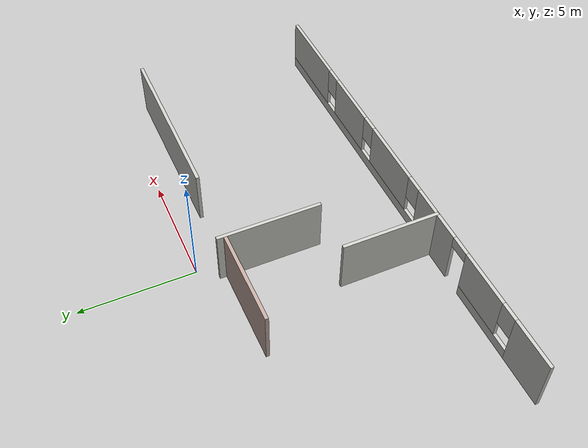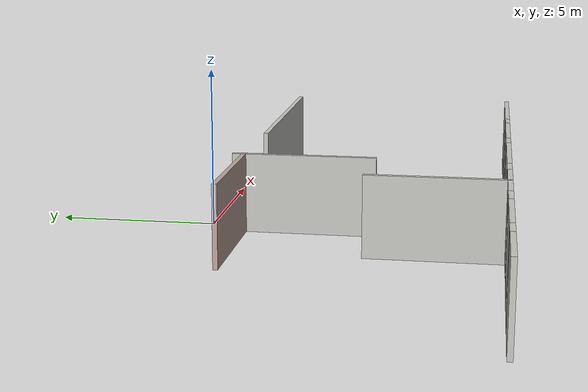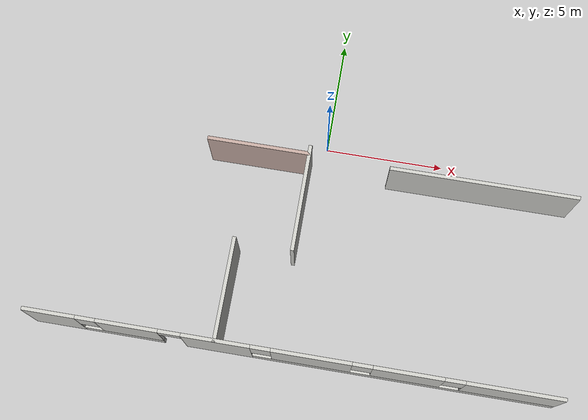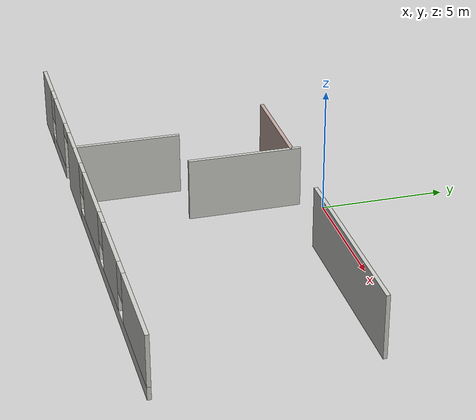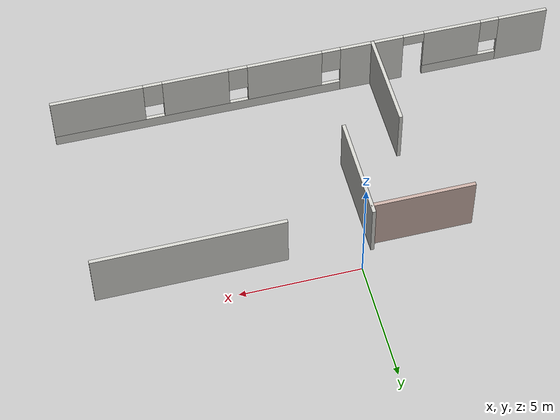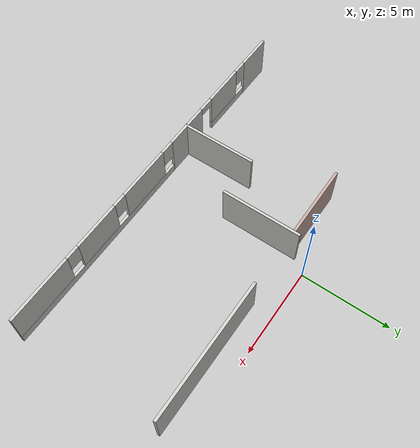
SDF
<sdf version="1.7">
 <model name="training_area">
  <link name="Wall_11">
   <pose>-2.97768 -7.23047 0 0 0 -1.5708</pose>
   <visual name="Wall_11_Visual">
    <pose>0 0 1.25 0 -0 0</pose>
    <geometry><box><size>4.25 0.15 2.5</size></box></geometry>
    <material>
     <script><uri>file://media/materials/scripts/gazebo.material</uri><name>Gazebo/CeilingTiled</name></script>
     <ambient>0.760784 0.662745 0.627451 1</ambient>
     <shader type="pixel"/>
    </material>
    <meta><layer>0</layer></meta>
   </visual>
   <collision name="Wall_11_Collision">
    <pose>0 0 1.25 0 -0 0</pose>
    <geometry><box><size>4.25 0.15 2.5</size></box></geometry>
    <surface>
     <friction>
      <ode><mu>1</mu><mu2>1</mu2><fdir1>0 0 0</fdir1><slip1>0</slip1><slip2>0</slip2></ode>
      <torsional>
       <coefficient>1</coefficient>
       <patch_radius>0</patch_radius>
       <surface_radius>0</surface_radius>
       <use_patch_radius>1</use_patch_radius>
       <ode><slip>0</slip></ode>
      </torsional>
     </friction>
     <bounce><restitution_coefficient>0</restitution_coefficient><threshold>1e+06</threshold></bounce>
     <contact>
      <collide_without_contact>0</collide_without_contact>
      <collide_without_contact_bitmask>1</collide_without_contact_bitmask>
      <collide_bitmask>1</collide_bitmask>
      <ode>
       <soft_cfm>0</soft_cfm>
       <soft_erp>0.2</soft_erp>
       <kp>1e+13</kp>
       <kd>1</kd>
       <max_vel>0.01</max_vel>
       <min_depth>0</min_depth>
      </ode>
      <bullet>
       <split_impulse>1</split_impulse>
       <split_impulse_penetration_threshold>-0.01</split_impulse_penetration_threshold>
       <soft_cfm>0</soft_cfm>
       <soft_erp>0.2</soft_erp>
       <kp>1e+13</kp>
       <kd>1</kd>
      </bullet>
     </contact>
    </surface>
   </collision>
  </link>
  <link name="Wall_16">
   <pose>-2.72495 -1.14348 0 0 -0 0</pose>
   <visual name="Wall_16_Visual">
    <pose>0 0 1.25 0 -0 0</pose>
    <geometry><box><size>4.25 0.15 2.5</size></box></geometry>
    <material>
     <script><uri>file://media/materials/scripts/gazebo.material</uri><name>Gazebo/Grey</name></script>
     <ambient>0.760784 0.662745 0.627451 1</ambient>
     <shader type="pixel"/>
    </material>
    <meta><layer>0</layer></meta>
   </visual>
   <collision name="Wall_16_Collision">
    <pose>0 0 1.25 0 -0 0</pose>
    <geometry><box><size>4.25 0.15 2.5</size></box></geometry>
    <surface>
     <friction>
      <ode><mu>1</mu><mu2>1</mu2><fdir1>0 0 0</fdir1><slip1>0</slip1><slip2>0</slip2></ode>
      <torsional>
       <coefficient>1</coefficient>
       <patch_radius>0</patch_radius>
       <surface_radius>0</surface_radius>
       <use_patch_radius>1</use_patch_radius>
       <ode><slip>0</slip></ode>
      </torsional>
     </friction>
     <bounce><restitution_coefficient>0</restitution_coefficient><threshold>1e+06</threshold></bounce>
     <contact>
      <collide_without_contact>0</collide_without_contact>
      <collide_without_contact_bitmask>1</collide_without_contact_bitmask>
      <collide_bitmask>1</collide_bitmask>
      <ode>
       <soft_cfm>0</soft_cfm>
       <soft_erp>0.2</soft_erp>
       <kp>1e+13</kp>
       <kd>1</kd>
       <max_vel>0.01</max_vel>
       <min_depth>0</min_depth>
      </ode>
      <bullet>
       <split_impulse>1</split_impulse>
       <split_impulse_penetration_threshold>-0.01</split_impulse_penetration_threshold>
       <soft_cfm>0</soft_cfm>
       <soft_erp>0.2</soft_erp>
       <kp>1e+13</kp>
       <kd>1</kd>
      </bullet>
     </contact>
    </surface>
   </collision>
  </link>
  <link name="Wall_20">
   <pose>-0.625048 -3.03701 0 0 -0 1.5708</pose>
   <inertial>
    <mass>1</mass>
    <inertia><ixx>1</ixx><ixy>0</ixy><ixz>0</ixz><iyy>1</iyy><iyz>0</iyz><izz>1</izz></inertia>
   </inertial>
   <visual name="Wall_20_Visual">
    <pose>0 0 1.25 0 -0 0</pose>
    <geometry><box><size>4.5 0.15 2.5</size></box></geometry>
    <material>
     <script><uri>file://media/materials/scripts/gazebo.material</uri><name>Gazebo/CeilingTiled</name></script>
     <ambient>0.596 0.475 0.42 1</ambient>
     <shader type="pixel"><normal_map>__default__</normal_map></shader>
     <diffuse>1 1 1 1</diffuse>
     <specular>0 0 0 1</specular>
     <emissive>0 0 0 1</emissive>
    </material>
    <meta><layer>0</layer></meta>
   </visual>
   <collision name="Wall_20_Collision">
    <pose>0 0 1.25 0 -0 0</pose>
    <geometry><box><size>4.5 0.15 2.5</size></box></geometry>
    <surface>
     <friction>
      <ode><mu>1</mu><mu2>1</mu2><fdir1>0 0 0</fdir1><slip1>0</slip1><slip2>0</slip2></ode>
      <torsional>
       <coefficient>1</coefficient>
       <patch_radius>0</patch_radius>
       <surface_radius>0</surface_radius>
       <use_patch_radius>1</use_patch_radius>
       <ode><slip>0</slip></ode>
      </torsional>
     </friction>
     <bounce><restitution_coefficient>0</restitution_coefficient><threshold>1e+06</threshold></bounce>
     <contact>
      <collide_without_contact>0</collide_without_contact>
      <collide_without_contact_bitmask>1</collide_without_contact_bitmask>
      <collide_bitmask>1</collide_bitmask>
      <ode>
       <soft_cfm>0</soft_cfm>
       <soft_erp>0.2</soft_erp>
       <kp>1e+13</kp>
       <kd>1</kd>
       <max_vel>0.01</max_vel>
       <min_depth>0</min_depth>
      </ode>
      <bullet>
       <split_impulse>1</split_impulse>
       <split_impulse_penetration_threshold>-0.01</split_impulse_penetration_threshold>
       <soft_cfm>0</soft_cfm>
       <soft_erp>0.2</soft_erp>
       <kp>1e+13</kp>
       <kd>1</kd>
      </bullet>
     </contact>
    </surface>
   </collision>
  </link>
  <link name="Wall_34">
   <pose>6.59252 -1.22485 0 0 -0 0</pose>
   <visual name="Wall_34_Visual">
    <pose>0 0 1.25 0 -0 0</pose>
    <geometry><box><size>7.75 0.15 2.5</size></box></geometry>
    <material>
     <script><uri>file://media/materials/scripts/gazebo.material</uri><name>Gazebo/CeilingTiled</name></script>
     <ambient>0.996078 0.47451 0.0196078 1</ambient>
     <shader type="pixel"/>
    </material>
    <meta><layer>0</layer></meta>
   </visual>
   <collision name="Wall_34_Collision">
    <pose>0 0 1.25 0 -0 0</pose>
    <geometry><box><size>7.75 0.15 2.5</size></box></geometry>
    <surface>
     <friction>
      <ode><mu>1</mu><mu2>1</mu2><fdir1>0 0 0</fdir1><slip1>0</slip1><slip2>0</slip2></ode>
      <torsional>
       <coefficient>1</coefficient>
       <patch_radius>0</patch_radius>
       <surface_radius>0</surface_radius>
       <use_patch_radius>1</use_patch_radius>
       <ode><slip>0</slip></ode>
      </torsional>
     </friction>
     <bounce><restitution_coefficient>0</restitution_coefficient><threshold>1e+06</threshold></bounce>
     <contact>
      <collide_without_contact>0</collide_without_contact>
      <collide_without_contact_bitmask>1</collide_without_contact_bitmask>
      <collide_bitmask>1</collide_bitmask>
      <ode>
       <soft_cfm>0</soft_cfm>
       <soft_erp>0.2</soft_erp>
       <kp>1e+13</kp>
       <kd>1</kd>
       <max_vel>0.01</max_vel>
       <min_depth>0</min_depth>
      </ode>
      <bullet>
       <split_impulse>1</split_impulse>
       <split_impulse_penetration_threshold>-0.01</split_impulse_penetration_threshold>
       <soft_cfm>0</soft_cfm>
       <soft_erp>0.2</soft_erp>
       <kp>1e+13</kp>
       <kd>1</kd>
      </bullet>
     </contact>
    </surface>
   </collision>
  </link>
  <link name="Wall_6">
   <pose>0.005 -9.3 0 0 -0 0</pose>
   <inertial>
    <mass>1</mass>
    <inertia><ixx>1</ixx><ixy>0</ixy><ixz>0</ixz><iyy>1</iyy><iyz>0</iyz><izz>1</izz></inertia>
   </inertial>
   <visual name="Wall_6_Visual_7">
    <pose>4.59406 0 1.5 0 -0 0</pose>
    <geometry><box><size>2.78031 0.15 2</size></box></geometry>
    <material>
     <script><uri>file://media/materials/scripts/gazebo.material</uri><name>Gazebo/CeilingTiled</name></script>
     <ambient>1 0.165 0.306 1</ambient>
     <shader type="pixel"><normal_map>__default__</normal_map></shader>
     <diffuse>1 1 1 1</diffuse>
     <specular>0 0 0 1</specular>
     <emissive>0 0 0 1</emissive>
    </material>
    <meta><layer>0</layer></meta>
   </visual>
   <visual name="Wall_6_Visual_9">
    <pose>-8.09976 0 1.9 0 -0 0</pose>
    <geometry><box><size>0.8 0.15 1.2</size></box></geometry>
    <material>
     <script><uri>file://media/materials/scripts/gazebo.material</uri><name>Gazebo/CeilingTiled</name></script>
     <ambient>0.6 0.965 0.406 1</ambient>
     <shader type="pixel"><normal_map>__default__</normal_map></shader>
     <diffuse>1 1 1 1</diffuse>
     <specular>0 0 0 1</specular>
     <emissive>0 0 0 1</emissive>
    </material>
    <meta><layer>0</layer></meta>
   </visual>
   <visual name="Wall_6_Visual_11">
    <pose>2.8039 0 1.9 0 -0 0</pose>
    <geometry><box><size>0.8 0.15 1.2</size></box></geometry>
    <material>
     <script><uri>file://media/materials/scripts/gazebo.material</uri><name>Gazebo/CeilingTiled</name></script>
     <ambient>1 0.165 0.306 1</ambient>
     <shader type="pixel"><normal_map>__default__</normal_map></shader>
     <diffuse>1 1 1 1</diffuse>
     <specular>0 0 0 1</specular>
     <emissive>0 0 0 1</emissive>
    </material>
    <meta><layer>0</layer></meta>
   </visual>
   <visual name="Wall_6_Visual_12">
    <pose>6.38421 0 1.9 0 -0 0</pose>
    <geometry><box><size>0.8 0.15 1.2</size></box></geometry>
    <material>
     <script><uri>file://media/materials/scripts/gazebo.material</uri><name>Gazebo/CeilingTiled</name></script>
     <ambient>1 0.765 0.906 1</ambient>
     <shader type="pixel"><normal_map>__default__</normal_map></shader>
     <diffuse>1 1 1 1</diffuse>
     <specular>0 0 0 1</specular>
     <emissive>0 0 0 1</emissive>
    </material>
    <meta><layer>0</layer></meta>
   </visual>
   <visual name="Wall_6_Visual_2">
    <pose>-6.85666 0 0.25 0 -0 0</pose>
    <geometry><box><size>3.2862 0.15 0.5</size></box></geometry>
    <material>
     <script><uri>file://media/materials/scripts/gazebo.material</uri><name>Gazebo/CeilingTiled</name></script>
     <ambient>0.5 0.9 0.1 1</ambient>
     <shader type="pixel"><normal_map>__default__</normal_map></shader>
     <diffuse>1 1 1 1</diffuse>
     <specular>0 0 0 1</specular>
     <emissive>0 0 0 1</emissive>
    </material>
    <meta><layer>0</layer></meta>
   </visual>
   <visual name="Wall_6_Visual_10">
    <pose>-1.18326 0 1.9 0 -0 0</pose>
    <geometry><box><size>0.8 0.15 1.2</size></box></geometry>
    <material>
     <script><uri>file://media/materials/scripts/gazebo.material</uri><name>Gazebo/CeilingTiled</name></script>
     <ambient>1 0.365 0.106 1</ambient>
     <shader type="pixel"><normal_map>__default__</normal_map></shader>
     <diffuse>1 1 1 1</diffuse>
     <specular>0 0 0 1</specular>
     <emissive>0 0 0 1</emissive>
    </material>
    <meta><layer>0</layer></meta>
   </visual>
   <visual name="Wall_6_Visual_6">
    <pose>0.810323 0 1.5 0 -0 0</pose>
    <geometry><box><size>3.18716 0.15 2</size></box></geometry>
    <material>
     <script><uri>file://media/materials/scripts/gazebo.material</uri><name>Gazebo/CeilingTiled</name></script>
     <ambient>1 0.565 0.1 1</ambient>
     <shader type="pixel"><normal_map>__default__</normal_map></shader>
     <diffuse>1 1 1 1</diffuse>
     <specular>0 0 0 1</specular>
     <emissive>0 0 0 1</emissive>
    </material>
    <meta><layer>0</layer></meta>
   </visual>
   <visual name="Wall_6_Visual_14">
    <pose>-4.76356 0 2.25 0 -0 0</pose>
    <geometry><box><size>0.9 0.15 0.5</size></box></geometry>
    <material>
     <script><uri>file://media/materials/scripts/gazebo.material</uri><name>Gazebo/CeilingTiled</name></script>
     <ambient>0.7 1 0.606 1</ambient>
     <shader type="pixel"><normal_map>__default__</normal_map></shader>
     <diffuse>1 1 1 1</diffuse>
     <specular>0 0 0 1</specular>
     <emissive>0 0 0 1</emissive>
    </material>
    <meta><layer>0</layer></meta>
   </visual>
   <visual name="Wall_6_Visual_13">
    <pose>-4.76356 0 2.25 0 -0 0</pose>
    <geometry><box><size>0.9 0.15 0.5</size></box></geometry>
    <material>
     <script><uri>file://media/materials/scripts/gazebo.material</uri><name>Gazebo/CeilingTiled</name></script>
     <ambient>0.7 0.965 0.606 1</ambient>
     <shader type="pixel"><normal_map>__default__</normal_map></shader>
     <diffuse>1 1 1 1</diffuse>
     <specular>0 0 0 1</specular>
     <emissive>0 0 0 1</emissive>
    </material>
    <meta><layer>0</layer></meta>
   </visual>
   <visual name="Wall_6_Visual_5">
    <pose>-6.45666 0 1.5 0 -0 0</pose>
    <geometry><box><size>2.4862 0.15 2</size></box></geometry>
    <material>
     <script><uri>file://media/materials/scripts/gazebo.material</uri><name>Gazebo/CeilingTiled</name></script>
     <ambient>0.5 0.965 0.9 1</ambient>
     <shader type="pixel"><normal_map>__default__</normal_map></shader>
     <diffuse>1 1 1 1</diffuse>
     <specular>0 0 0 1</specular>
     <emissive>0 0 0 1</emissive>
    </material>
    <meta><layer>0</layer></meta>
   </visual>
   <visual name="Wall_6_Visual_1">
    <pose>-2.94841 0 1.25 0 -0 0</pose>
    <geometry><box><size>2.73031 0.15 2.5</size></box></geometry>
    <material>
     <script><uri>file://media/materials/scripts/gazebo.material</uri><name>Gazebo/CeilingTiled</name></script>
     <ambient>0.1 0.5 1 1</ambient>
     <shader type="pixel"><normal_map>__default__</normal_map></shader>
     <diffuse>1 1 1 1</diffuse>
     <specular>0 0 0 1</specular>
     <emissive>0 0 0 1</emissive>
    </material>
    <meta><layer>0</layer></meta>
   </visual>
   <visual name="Wall_6_Visual_0">
    <pose>-9.56238 0 1.25 0 -0 0</pose>
    <geometry><box><size>2.12524 0.15 2.5</size></box></geometry>
    <material>
     <script><uri>file://media/materials/scripts/gazebo.material</uri><name>Gazebo/CeilingTiled</name></script>
     <ambient>0.6 0.265 0.106 1</ambient>
     <shader type="pixel"><normal_map>__default__</normal_map></shader>
     <diffuse>1 1 1 1</diffuse>
     <specular>0 0 0 1</specular>
     <emissive>0 0 0 1</emissive>
    </material>
    <meta><layer>0</layer></meta>
   </visual>
   <visual name="Wall_6_Visual_4">
    <pose>-6.45666 0 1.5 0 -0 0</pose>
    <geometry><box><size>2.4862 0.15 2</size></box></geometry>
    <material>
     <script><uri>file://media/materials/scripts/gazebo.material</uri><name>Gazebo/CeilingTiled</name></script>
     <ambient>0.8 0.165 0.306 1</ambient>
     <shader type="pixel"><normal_map>__default__</normal_map></shader>
     <diffuse>1 1 1 1</diffuse>
     <specular>0 0 0 1</specular>
     <emissive>0 0 0 1</emissive>
    </material>
    <meta><layer>0</layer></meta>
   </visual>
   <visual name="Wall_6_Visual_8">
    <pose>8.70461 0 1.5 0 -0 0</pose>
    <geometry><box><size>3.84079 0.15 2</size></box></geometry>
    <material>
     <script><uri>file://media/materials/scripts/gazebo.material</uri><name>Gazebo/CeilingTiled</name></script>
     <ambient>0.7 0.8 0.1 1</ambient>
     <shader type="pixel"><normal_map>__default__</normal_map></shader>
     <diffuse>1 1 1 1</diffuse>
     <specular>0 0 0 1</specular>
     <emissive>0 0 0 1</emissive>
    </material>
    <meta><layer>0</layer></meta>
   </visual>
   <visual name="Wall_6_Visual_3">
    <pose>4.52087 0 0.25 0 -0 0</pose>
    <geometry><box><size>12.2083 0.15 0.5</size></box></geometry>
    <material>
     <script><uri>file://media/materials/scripts/gazebo.material</uri><name>Gazebo/CeilingTiled</name></script>
     <ambient>0.2 0.6 0.906 1</ambient>
     <shader type="pixel"><normal_map>__default__</normal_map></shader>
     <diffuse>1 1 1 1</diffuse>
     <specular>0 0 0 1</specular>
     <emissive>0 0 0 1</emissive>
    </material>
    <meta><layer>0</layer></meta>
   </visual>
   <collision name="Wall_6_Collision_11">
    <pose>2.8039 0 1.9 0 -0 0</pose>
    <geometry><box><size>0.8 0.15 1.2</size></box></geometry>
    <surface>
     <friction>
      <ode><mu>1</mu><mu2>1</mu2><fdir1>0 0 0</fdir1><slip1>0</slip1><slip2>0</slip2></ode>
      <torsional>
       <coefficient>1</coefficient>
       <patch_radius>0</patch_radius>
       <surface_radius>0</surface_radius>
       <use_patch_radius>1</use_patch_radius>
       <ode><slip>0</slip></ode>
      </torsional>
     </friction>
     <bounce><restitution_coefficient>0</restitution_coefficient><threshold>1e+06</threshold></bounce>
     <contact>
      <collide_without_contact>0</collide_without_contact>
      <collide_without_contact_bitmask>1</collide_without_contact_bitmask>
      <collide_bitmask>1</collide_bitmask>
      <ode>
       <soft_cfm>0</soft_cfm>
       <soft_erp>0.2</soft_erp>
       <kp>1e+13</kp>
       <kd>1</kd>
       <max_vel>0.01</max_vel>
       <min_depth>0</min_depth>
      </ode>
      <bullet>
       <split_impulse>1</split_impulse>
       <split_impulse_penetration_threshold>-0.01</split_impulse_penetration_threshold>
       <soft_cfm>0</soft_cfm>
       <soft_erp>0.2</soft_erp>
       <kp>1e+13</kp>
       <kd>1</kd>
      </bullet>
     </contact>
    </surface>
   </collision>
   <collision name="Wall_6_Collision_13">
    <pose>-4.76356 0 2.25 0 -0 0</pose>
    <geometry><box><size>0.9 0.15 0.5</size></box></geometry>
    <surface>
     <friction>
      <ode><mu>1</mu><mu2>1</mu2><fdir1>0 0 0</fdir1><slip1>0</slip1><slip2>0</slip2></ode>
      <torsional>
       <coefficient>1</coefficient>
       <patch_radius>0</patch_radius>
       <surface_radius>0</surface_radius>
       <use_patch_radius>1</use_patch_radius>
       <ode><slip>0</slip></ode>
      </torsional>
     </friction>
     <bounce><restitution_coefficient>0</restitution_coefficient><threshold>1e+06</threshold></bounce>
     <contact>
      <collide_without_contact>0</collide_without_contact>
      <collide_without_contact_bitmask>1</collide_without_contact_bitmask>
      <collide_bitmask>1</collide_bitmask>
      <ode>
       <soft_cfm>0</soft_cfm>
       <soft_erp>0.2</soft_erp>
       <kp>1e+13</kp>
       <kd>1</kd>
       <max_vel>0.01</max_vel>
       <min_depth>0</min_depth>
      </ode>
      <bullet>
       <split_impulse>1</split_impulse>
       <split_impulse_penetration_threshold>-0.01</split_impulse_penetration_threshold>
       <soft_cfm>0</soft_cfm>
       <soft_erp>0.2</soft_erp>
       <kp>1e+13</kp>
       <kd>1</kd>
      </bullet>
     </contact>
    </surface>
   </collision>
   <collision name="Wall_6_Collision_14">
    <pose>-4.76356 0 2.25 0 -0 0</pose>
    <geometry><box><size>0.9 0.15 0.5</size></box></geometry>
    <surface>
     <friction>
      <ode><mu>1</mu><mu2>1</mu2><fdir1>0 0 0</fdir1><slip1>0</slip1><slip2>0</slip2></ode>
      <torsional>
       <coefficient>1</coefficient>
       <patch_radius>0</patch_radius>
       <surface_radius>0</surface_radius>
       <use_patch_radius>1</use_patch_radius>
       <ode><slip>0</slip></ode>
      </torsional>
     </friction>
     <bounce><restitution_coefficient>0</restitution_coefficient><threshold>1e+06</threshold></bounce>
     <contact>
      <collide_without_contact>0</collide_without_contact>
      <collide_without_contact_bitmask>1</collide_without_contact_bitmask>
      <collide_bitmask>1</collide_bitmask>
      <ode>
       <soft_cfm>0</soft_cfm>
       <soft_erp>0.2</soft_erp>
       <kp>1e+13</kp>
       <kd>1</kd>
       <max_vel>0.01</max_vel>
       <min_depth>0</min_depth>
      </ode>
      <bullet>
       <split_impulse>1</split_impulse>
       <split_impulse_penetration_threshold>-0.01</split_impulse_penetration_threshold>
       <soft_cfm>0</soft_cfm>
       <soft_erp>0.2</soft_erp>
       <kp>1e+13</kp>
       <kd>1</kd>
      </bullet>
     </contact>
    </surface>
   </collision>
   <collision name="Wall_6_Collision_12">
    <pose>6.38421 0 1.9 0 -0 0</pose>
    <geometry><box><size>0.8 0.15 1.2</size></box></geometry>
    <surface>
     <friction>
      <ode><mu>1</mu><mu2>1</mu2><fdir1>0 0 0</fdir1><slip1>0</slip1><slip2>0</slip2></ode>
      <torsional>
       <coefficient>1</coefficient>
       <patch_radius>0</patch_radius>
       <surface_radius>0</surface_radius>
       <use_patch_radius>1</use_patch_radius>
       <ode><slip>0</slip></ode>
      </torsional>
     </friction>
     <bounce><restitution_coefficient>0</restitution_coefficient><threshold>1e+06</threshold></bounce>
     <contact>
      <collide_without_contact>0</collide_without_contact>
      <collide_without_contact_bitmask>1</collide_without_contact_bitmask>
      <collide_bitmask>1</collide_bitmask>
      <ode>
       <soft_cfm>0</soft_cfm>
       <soft_erp>0.2</soft_erp>
       <kp>1e+13</kp>
       <kd>1</kd>
       <max_vel>0.01</max_vel>
       <min_depth>0</min_depth>
      </ode>
      <bullet>
       <split_impulse>1</split_impulse>
       <split_impulse_penetration_threshold>-0.01</split_impulse_penetration_threshold>
       <soft_cfm>0</soft_cfm>
       <soft_erp>0.2</soft_erp>
       <kp>1e+13</kp>
       <kd>1</kd>
      </bullet>
     </contact>
    </surface>
   </collision>
   <collision name="Wall_6_Collision_6">
    <pose>0.810323 0 1.5 0 -0 0</pose>
    <geometry><box><size>3.18716 0.15 2</size></box></geometry>
    <surface>
     <friction>
      <ode><mu>1</mu><mu2>1</mu2><fdir1>0 0 0</fdir1><slip1>0</slip1><slip2>0</slip2></ode>
      <torsional>
       <coefficient>1</coefficient>
       <patch_radius>0</patch_radius>
       <surface_radius>0</surface_radius>
       <use_patch_radius>1</use_patch_radius>
       <ode><slip>0</slip></ode>
      </torsional>
     </friction>
     <bounce><restitution_coefficient>0</restitution_coefficient><threshold>1e+06</threshold></bounce>
     <contact>
      <collide_without_contact>0</collide_without_contact>
      <collide_without_contact_bitmask>1</collide_without_contact_bitmask>
      <collide_bitmask>1</collide_bitmask>
      <ode>
       <soft_cfm>0</soft_cfm>
       <soft_erp>0.2</soft_erp>
       <kp>1e+13</kp>
       <kd>1</kd>
       <max_vel>0.01</max_vel>
       <min_depth>0</min_depth>
      </ode>
      <bullet>
       <split_impulse>1</split_impulse>
       <split_impulse_penetration_threshold>-0.01</split_impulse_penetration_threshold>
       <soft_cfm>0</soft_cfm>
       <soft_erp>0.2</soft_erp>
       <kp>1e+13</kp>
       <kd>1</kd>
      </bullet>
     </contact>
    </surface>
   </collision>
   <collision name="Wall_6_Collision_5">
    <pose>-6.45666 0 1.5 0 -0 0</pose>
    <geometry><box><size>2.4862 0.15 2</size></box></geometry>
    <surface>
     <friction>
      <ode><mu>1</mu><mu2>1</mu2><fdir1>0 0 0</fdir1><slip1>0</slip1><slip2>0</slip2></ode>
      <torsional>
       <coefficient>1</coefficient>
       <patch_radius>0</patch_radius>
       <surface_radius>0</surface_radius>
       <use_patch_radius>1</use_patch_radius>
       <ode><slip>0</slip></ode>
      </torsional>
     </friction>
     <bounce><restitution_coefficient>0</restitution_coefficient><threshold>1e+06</threshold></bounce>
     <contact>
      <collide_without_contact>0</collide_without_contact>
      <collide_without_contact_bitmask>1</collide_without_contact_bitmask>
      <collide_bitmask>1</collide_bitmask>
      <ode>
       <soft_cfm>0</soft_cfm>
       <soft_erp>0.2</soft_erp>
       <kp>1e+13</kp>
       <kd>1</kd>
       <max_vel>0.01</max_vel>
       <min_depth>0</min_depth>
      </ode>
      <bullet>
       <split_impulse>1</split_impulse>
       <split_impulse_penetration_threshold>-0.01</split_impulse_penetration_threshold>
       <soft_cfm>0</soft_cfm>
       <soft_erp>0.2</soft_erp>
       <kp>1e+13</kp>
       <kd>1</kd>
      </bullet>
     </contact>
    </surface>
   </collision>
   <collision name="Wall_6_Collision_3">
    <pose>4.52087 0 0.25 0 -0 0</pose>
    <geometry><box><size>12.2083 0.15 0.5</size></box></geometry>
    <surface>
     <friction>
      <ode><mu>1</mu><mu2>1</mu2><fdir1>0 0 0</fdir1><slip1>0</slip1><slip2>0</slip2></ode>
      <torsional>
       <coefficient>1</coefficient>
       <patch_radius>0</patch_radius>
       <surface_radius>0</surface_radius>
       <use_patch_radius>1</use_patch_radius>
       <ode><slip>0</slip></ode>
      </torsional>
     </friction>
     <bounce><restitution_coefficient>0</restitution_coefficient><threshold>1e+06</threshold></bounce>
     <contact>
      <collide_without_contact>0</collide_without_contact>
      <collide_without_contact_bitmask>1</collide_without_contact_bitmask>
      <collide_bitmask>1</collide_bitmask>
      <ode>
       <soft_cfm>0</soft_cfm>
       <soft_erp>0.2</soft_erp>
       <kp>1e+13</kp>
       <kd>1</kd>
       <max_vel>0.01</max_vel>
       <min_depth>0</min_depth>
      </ode>
      <bullet>
       <split_impulse>1</split_impulse>
       <split_impulse_penetration_threshold>-0.01</split_impulse_penetration_threshold>
       <soft_cfm>0</soft_cfm>
       <soft_erp>0.2</soft_erp>
       <kp>1e+13</kp>
       <kd>1</kd>
      </bullet>
     </contact>
    </surface>
   </collision>
   <collision name="Wall_6_Collision_10">
    <pose>-1.18326 0 1.9 0 -0 0</pose>
    <geometry><box><size>0.8 0.15 1.2</size></box></geometry>
    <surface>
     <friction>
      <ode><mu>1</mu><mu2>1</mu2><fdir1>0 0 0</fdir1><slip1>0</slip1><slip2>0</slip2></ode>
      <torsional>
       <coefficient>1</coefficient>
       <patch_radius>0</patch_radius>
       <surface_radius>0</surface_radius>
       <use_patch_radius>1</use_patch_radius>
       <ode><slip>0</slip></ode>
      </torsional>
     </friction>
     <bounce><restitution_coefficient>0</restitution_coefficient><threshold>1e+06</threshold></bounce>
     <contact>
      <collide_without_contact>0</collide_without_contact>
      <collide_without_contact_bitmask>1</collide_without_contact_bitmask>
      <collide_bitmask>1</collide_bitmask>
      <ode>
       <soft_cfm>0</soft_cfm>
       <soft_erp>0.2</soft_erp>
       <kp>1e+13</kp>
       <kd>1</kd>
       <max_vel>0.01</max_vel>
       <min_depth>0</min_depth>
      </ode>
      <bullet>
       <split_impulse>1</split_impulse>
       <split_impulse_penetration_threshold>-0.01</split_impulse_penetration_threshold>
       <soft_cfm>0</soft_cfm>
       <soft_erp>0.2</soft_erp>
       <kp>1e+13</kp>
       <kd>1</kd>
      </bullet>
     </contact>
    </surface>
   </collision>
   <collision name="Wall_6_Collision_1">
    <pose>-2.94841 0 1.25 0 -0 0</pose>
    <geometry><box><size>2.73031 0.15 2.5</size></box></geometry>
    <surface>
     <friction>
      <ode><mu>1</mu><mu2>1</mu2><fdir1>0 0 0</fdir1><slip1>0</slip1><slip2>0</slip2></ode>
      <torsional>
       <coefficient>1</coefficient>
       <patch_radius>0</patch_radius>
       <surface_radius>0</surface_radius>
       <use_patch_radius>1</use_patch_radius>
       <ode><slip>0</slip></ode>
      </torsional>
     </friction>
     <bounce><restitution_coefficient>0</restitution_coefficient><threshold>1e+06</threshold></bounce>
     <contact>
      <collide_without_contact>0</collide_without_contact>
      <collide_without_contact_bitmask>1</collide_without_contact_bitmask>
      <collide_bitmask>1</collide_bitmask>
      <ode>
       <soft_cfm>0</soft_cfm>
       <soft_erp>0.2</soft_erp>
       <kp>1e+13</kp>
       <kd>1</kd>
       <max_vel>0.01</max_vel>
       <min_depth>0</min_depth>
      </ode>
      <bullet>
       <split_impulse>1</split_impulse>
       <split_impulse_penetration_threshold>-0.01</split_impulse_penetration_threshold>
       <soft_cfm>0</soft_cfm>
       <soft_erp>0.2</soft_erp>
       <kp>1e+13</kp>
       <kd>1</kd>
      </bullet>
     </contact>
    </surface>
   </collision>
   <collision name="Wall_6_Collision_8">
    <pose>8.70461 0 1.5 0 -0 0</pose>
    <geometry><box><size>3.84079 0.15 2</size></box></geometry>
    <surface>
     <friction>
      <ode><mu>1</mu><mu2>1</mu2><fdir1>0 0 0</fdir1><slip1>0</slip1><slip2>0</slip2></ode>
      <torsional>
       <coefficient>1</coefficient>
       <patch_radius>0</patch_radius>
       <surface_radius>0</surface_radius>
       <use_patch_radius>1</use_patch_radius>
       <ode><slip>0</slip></ode>
      </torsional>
     </friction>
     <bounce><restitution_coefficient>0</restitution_coefficient><threshold>1e+06</threshold></bounce>
     <contact>
      <collide_without_contact>0</collide_without_contact>
      <collide_without_contact_bitmask>1</collide_without_contact_bitmask>
      <collide_bitmask>1</collide_bitmask>
      <ode>
       <soft_cfm>0</soft_cfm>
       <soft_erp>0.2</soft_erp>
       <kp>1e+13</kp>
       <kd>1</kd>
       <max_vel>0.01</max_vel>
       <min_depth>0</min_depth>
      </ode>
      <bullet>
       <split_impulse>1</split_impulse>
       <split_impulse_penetration_threshold>-0.01</split_impulse_penetration_threshold>
       <soft_cfm>0</soft_cfm>
       <soft_erp>0.2</soft_erp>
       <kp>1e+13</kp>
       <kd>1</kd>
      </bullet>
     </contact>
    </surface>
   </collision>
   <collision name="Wall_6_Collision_2">
    <pose>-6.85666 0 0.25 0 -0 0</pose>
    <geometry><box><size>3.2862 0.15 0.5</size></box></geometry>
    <surface>
     <friction>
      <ode><mu>1</mu><mu2>1</mu2><fdir1>0 0 0</fdir1><slip1>0</slip1><slip2>0</slip2></ode>
      <torsional>
       <coefficient>1</coefficient>
       <patch_radius>0</patch_radius>
       <surface_radius>0</surface_radius>
       <use_patch_radius>1</use_patch_radius>
       <ode><slip>0</slip></ode>
      </torsional>
     </friction>
     <bounce><restitution_coefficient>0</restitution_coefficient><threshold>1e+06</threshold></bounce>
     <contact>
      <collide_without_contact>0</collide_without_contact>
      <collide_without_contact_bitmask>1</collide_without_contact_bitmask>
      <collide_bitmask>1</collide_bitmask>
      <ode>
       <soft_cfm>0</soft_cfm>
       <soft_erp>0.2</soft_erp>
       <kp>1e+13</kp>
       <kd>1</kd>
       <max_vel>0.01</max_vel>
       <min_depth>0</min_depth>
      </ode>
      <bullet>
       <split_impulse>1</split_impulse>
       <split_impulse_penetration_threshold>-0.01</split_impulse_penetration_threshold>
       <soft_cfm>0</soft_cfm>
       <soft_erp>0.2</soft_erp>
       <kp>1e+13</kp>
       <kd>1</kd>
      </bullet>
     </contact>
    </surface>
   </collision>
   <collision name="Wall_6_Collision_9">
    <pose>-8.09976 0 1.9 0 -0 0</pose>
    <geometry><box><size>0.8 0.15 1.2</size></box></geometry>
    <surface>
     <friction>
      <ode><mu>1</mu><mu2>1</mu2><fdir1>0 0 0</fdir1><slip1>0</slip1><slip2>0</slip2></ode>
      <torsional>
       <coefficient>1</coefficient>
       <patch_radius>0</patch_radius>
       <surface_radius>0</surface_radius>
       <use_patch_radius>1</use_patch_radius>
       <ode><slip>0</slip></ode>
      </torsional>
     </friction>
     <bounce><restitution_coefficient>0</restitution_coefficient><threshold>1e+06</threshold></bounce>
     <contact>
      <collide_without_contact>0</collide_without_contact>
      <collide_without_contact_bitmask>1</collide_without_contact_bitmask>
      <collide_bitmask>1</collide_bitmask>
      <ode>
       <soft_cfm>0</soft_cfm>
       <soft_erp>0.2</soft_erp>
       <kp>1e+13</kp>
       <kd>1</kd>
       <max_vel>0.01</max_vel>
       <min_depth>0</min_depth>
      </ode>
      <bullet>
       <split_impulse>1</split_impulse>
       <split_impulse_penetration_threshold>-0.01</split_impulse_penetration_threshold>
       <soft_cfm>0</soft_cfm>
       <soft_erp>0.2</soft_erp>
       <kp>1e+13</kp>
       <kd>1</kd>
      </bullet>
     </contact>
    </surface>
   </collision>
   <collision name="Wall_6_Collision_4">
    <pose>-6.45666 0 1.5 0 -0 0</pose>
    <geometry><box><size>2.4862 0.15 2</size></box></geometry>
    <surface>
     <friction>
      <ode><mu>1</mu><mu2>1</mu2><fdir1>0 0 0</fdir1><slip1>0</slip1><slip2>0</slip2></ode>
      <torsional>
       <coefficient>1</coefficient>
       <patch_radius>0</patch_radius>
       <surface_radius>0</surface_radius>
       <use_patch_radius>1</use_patch_radius>
       <ode><slip>0</slip></ode>
      </torsional>
     </friction>
     <bounce><restitution_coefficient>0</restitution_coefficient><threshold>1e+06</threshold></bounce>
     <contact>
      <collide_without_contact>0</collide_without_contact>
      <collide_without_contact_bitmask>1</collide_without_contact_bitmask>
      <collide_bitmask>1</collide_bitmask>
      <ode>
       <soft_cfm>0</soft_cfm>
       <soft_erp>0.2</soft_erp>
       <kp>1e+13</kp>
       <kd>1</kd>
       <max_vel>0.01</max_vel>
       <min_depth>0</min_depth>
      </ode>
      <bullet>
       <split_impulse>1</split_impulse>
       <split_impulse_penetration_threshold>-0.01</split_impulse_penetration_threshold>
       <soft_cfm>0</soft_cfm>
       <soft_erp>0.2</soft_erp>
       <kp>1e+13</kp>
       <kd>1</kd>
      </bullet>
     </contact>
    </surface>
   </collision>
   <collision name="Wall_6_Collision_0">
    <pose>-9.56238 0 1.25 0 -0 0</pose>
    <geometry><box><size>2.12524 0.15 2.5</size></box></geometry>
    <surface>
     <friction>
      <ode><mu>1</mu><mu2>1</mu2><fdir1>0 0 0</fdir1><slip1>0</slip1><slip2>0</slip2></ode>
      <torsional>
       <coefficient>1</coefficient>
       <patch_radius>0</patch_radius>
       <surface_radius>0</surface_radius>
       <use_patch_radius>1</use_patch_radius>
       <ode><slip>0</slip></ode>
      </torsional>
     </friction>
     <bounce><restitution_coefficient>0</restitution_coefficient><threshold>1e+06</threshold></bounce>
     <contact>
      <collide_without_contact>0</collide_without_contact>
      <collide_without_contact_bitmask>1</collide_without_contact_bitmask>
      <collide_bitmask>1</collide_bitmask>
      <ode>
       <soft_cfm>0</soft_cfm>
       <soft_erp>0.2</soft_erp>
       <kp>1e+13</kp>
       <kd>1</kd>
       <max_vel>0.01</max_vel>
       <min_depth>0</min_depth>
      </ode>
      <bullet>
       <split_impulse>1</split_impulse>
       <split_impulse_penetration_threshold>-0.01</split_impulse_penetration_threshold>
       <soft_cfm>0</soft_cfm>
       <soft_erp>0.2</soft_erp>
       <kp>1e+13</kp>
       <kd>1</kd>
      </bullet>
     </contact>
    </surface>
   </collision>
   <collision name="Wall_6_Collision_7">
    <pose>4.59406 0 1.5 0 -0 0</pose>
    <geometry><box><size>2.78031 0.15 2</size></box></geometry>
    <surface>
     <friction>
      <ode><mu>1</mu><mu2>1</mu2><fdir1>0 0 0</fdir1><slip1>0</slip1><slip2>0</slip2></ode>
      <torsional>
       <coefficient>1</coefficient>
       <patch_radius>0</patch_radius>
       <surface_radius>0</surface_radius>
       <use_patch_radius>1</use_patch_radius>
       <ode><slip>0</slip></ode>
      </torsional>
     </friction>
     <bounce><restitution_coefficient>0</restitution_coefficient><threshold>1e+06</threshold></bounce>
     <contact>
      <collide_without_contact>0</collide_without_contact>
      <collide_without_contact_bitmask>1</collide_without_contact_bitmask>
      <collide_bitmask>1</collide_bitmask>
      <ode>
       <soft_cfm>0</soft_cfm>
       <soft_erp>0.2</soft_erp>
       <kp>1e+13</kp>
       <kd>1</kd>
       <max_vel>0.01</max_vel>
       <min_depth>0</min_depth>
      </ode>
      <bullet>
       <split_impulse>1</split_impulse>
       <split_impulse_penetration_threshold>-0.01</split_impulse_penetration_threshold>
       <soft_cfm>0</soft_cfm>
       <soft_erp>0.2</soft_erp>
       <kp>1e+13</kp>
       <kd>1</kd>
      </bullet>
     </contact>
    </surface>
   </collision>
  </link>
  <static>1</static>
 </model>
</sdf>
